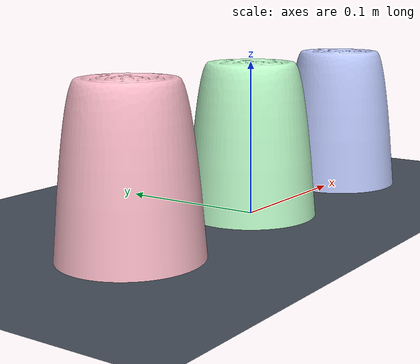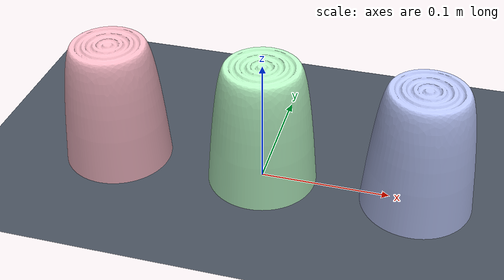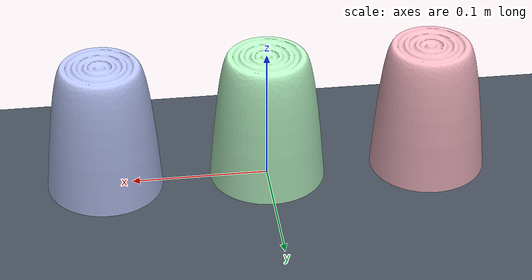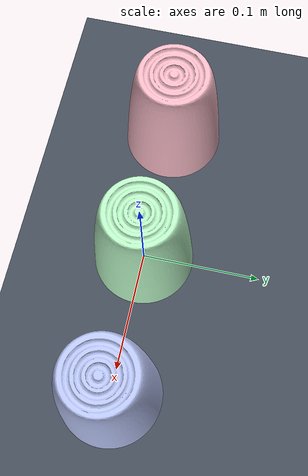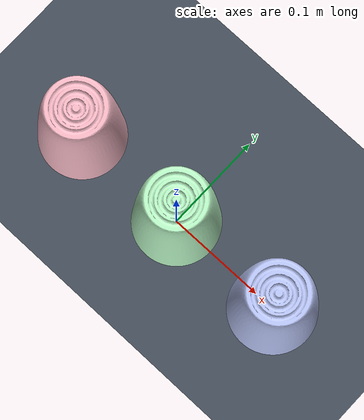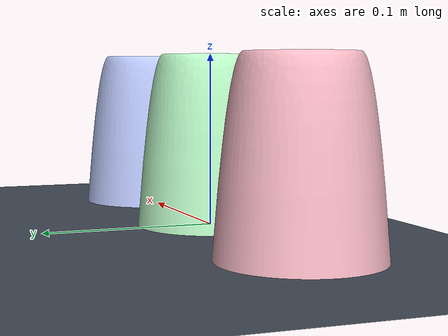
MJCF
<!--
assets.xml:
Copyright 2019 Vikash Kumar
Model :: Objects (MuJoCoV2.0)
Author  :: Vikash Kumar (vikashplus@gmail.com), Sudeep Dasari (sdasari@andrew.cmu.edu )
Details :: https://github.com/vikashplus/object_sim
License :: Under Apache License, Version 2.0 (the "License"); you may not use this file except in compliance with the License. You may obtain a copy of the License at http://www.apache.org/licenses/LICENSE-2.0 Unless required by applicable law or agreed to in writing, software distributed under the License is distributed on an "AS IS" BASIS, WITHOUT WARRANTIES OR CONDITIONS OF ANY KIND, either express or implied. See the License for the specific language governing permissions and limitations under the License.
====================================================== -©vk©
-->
<mujoco model="shell_game">
  <compiler angle="radian" meshdir="../../submodules/object_sim"/>

  <option timestep="0.002" gravity="0 0 -9.81"/>

  <default>
    <default class="grab">
      <joint limited="false" margin="0.01" armature="0.001" damping="0" frictionloss="0.001"/>
      <geom type="mesh" rgba=".93 .99 .97 1.0"/>
      <site size="0.005 0 0" rgba="0.4 0.9 0.4 1"/>
      <default class="object_col">
        <geom type="mesh" density="1250" contype="1" conaffinity="1"
              friction="1 0.5 0.01" margin="0.0005" condim="4"
              rgba=".3 .4 .5 1" group="3"/>
      </default>
    </default>
  </default>

  <visual>
    <global offheight="224" offwidth="224"/>
    <headlight diffuse="0.6 0.6 0.6" ambient="0.4 0.4 0.4" specular="0.1 0.1 0.1"/>
    <quality shadowsize="2048" offsamples="8"/>
  </visual>

  <include file="../../submodules/object_sim/cup/assets.xml"/>

  <asset>
    <texture name="grid" type="2d" builtin="checker" width="512" height="512"
             rgb1="0.25 0.28 0.32" rgb2="0.30 0.34 0.40"/>
    <material name="floor_mat" texture="grid" texrepeat="6 6" reflectance="0.1"/>
  </asset>

  <worldbody>
    <light directional="true" dir="0 0.3 -1" pos="0 -0.3 1.0"
           diffuse="0.8 0.8 0.8" specular="0.2 0.2 0.2"/>

    <geom name="floor" type="plane" size="2 2 0.1" pos="0 0 0" material="floor_mat"/>

    <camera name="head_on" pos="0 -0.55 0.22" xyaxes="1 0 0 0 0.4 0.9"/>

    <include file="../objects/ball.xml"/>

    <body name="cup0" mocap="true" pos="-0.12 0 0.05" euler="3.14159 0 0" childclass="grab">
      <geom name="cup0_visual" mesh="cup" rgba="1 0.75 0.8 1.0"/>
      <geom name="cup0_c0" mesh="contact0" class="object_col"/>
      <geom name="cup0_c1" mesh="contact1" class="object_col"/>
      <geom name="cup0_c2" mesh="contact2" class="object_col"/>
      <geom name="cup0_c3" mesh="contact3" class="object_col"/>
      <geom name="cup0_c4" mesh="contact4" class="object_col"/>
      <geom name="cup0_c5" mesh="contact5" class="object_col"/>
      <geom name="cup0_c6" mesh="contact6" class="object_col"/>
      <geom name="cup0_c7" mesh="contact7" class="object_col"/>
      <geom name="cup0_c8" mesh="contact8" class="object_col"/>
      <geom name="cup0_c9" mesh="contact9" class="object_col"/>
      <geom name="cup0_c10" mesh="contact10" class="object_col"/>
      <geom name="cup0_c11" mesh="contact11" class="object_col"/>
    </body>

    <body name="cup1" mocap="true" pos="0 0 0.05" euler="3.14159 0 0" childclass="grab">
      <geom name="cup1_visual" mesh="cup" rgba="0.75 1 0.8 1.0"/>
      <geom name="cup1_c0" mesh="contact0" class="object_col"/>
      <geom name="cup1_c1" mesh="contact1" class="object_col"/>
      <geom name="cup1_c2" mesh="contact2" class="object_col"/>
      <geom name="cup1_c3" mesh="contact3" class="object_col"/>
      <geom name="cup1_c4" mesh="contact4" class="object_col"/>
      <geom name="cup1_c5" mesh="contact5" class="object_col"/>
      <geom name="cup1_c6" mesh="contact6" class="object_col"/>
      <geom name="cup1_c7" mesh="contact7" class="object_col"/>
      <geom name="cup1_c8" mesh="contact8" class="object_col"/>
      <geom name="cup1_c9" mesh="contact9" class="object_col"/>
      <geom name="cup1_c10" mesh="contact10" class="object_col"/>
      <geom name="cup1_c11" mesh="contact11" class="object_col"/>
    </body>

    <body name="cup2" mocap="true" pos="0.12 0 0.05" euler="3.14159 0 0" childclass="grab">
      <geom name="cup2_visual" mesh="cup" rgba="0.75 0.8 1 1.0"/>
      <geom name="cup2_c0" mesh="contact0" class="object_col"/>
      <geom name="cup2_c1" mesh="contact1" class="object_col"/>
      <geom name="cup2_c2" mesh="contact2" class="object_col"/>
      <geom name="cup2_c3" mesh="contact3" class="object_col"/>
      <geom name="cup2_c4" mesh="contact4" class="object_col"/>
      <geom name="cup2_c5" mesh="contact5" class="object_col"/>
      <geom name="cup2_c6" mesh="contact6" class="object_col"/>
      <geom name="cup2_c7" mesh="contact7" class="object_col"/>
      <geom name="cup2_c8" mesh="contact8" class="object_col"/>
      <geom name="cup2_c9" mesh="contact9" class="object_col"/>
      <geom name="cup2_c10" mesh="contact10" class="object_col"/>
      <geom name="cup2_c11" mesh="contact11" class="object_col"/>
    </body>
  </worldbody>
</mujoco>

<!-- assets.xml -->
<mujocoinclude model="">
    <asset>
        <mesh name="cup" file="../object_sim/cup/cup.stl"/>
        <mesh name="contact0" file="../object_sim/cup/contact0.stl"/>
        <mesh name="contact1" file="../object_sim/cup/contact1.stl"/>
        <mesh name="contact2" file="../object_sim/cup/contact2.stl"/>
        <mesh name="contact3" file="../object_sim/cup/contact3.stl"/>
        <mesh name="contact4" file="../object_sim/cup/contact4.stl"/>
        <mesh name="contact5" file="../object_sim/cup/contact5.stl"/>
        <mesh name="contact6" file="../object_sim/cup/contact6.stl"/>
        <mesh name="contact7" file="../object_sim/cup/contact7.stl"/>
        <mesh name="contact8" file="../object_sim/cup/contact8.stl"/>
        <mesh name="contact9" file="../object_sim/cup/contact9.stl"/>
        <mesh name="contact10" file="../object_sim/cup/contact10.stl"/>
        <mesh name="contact11" file="../object_sim/cup/contact11.stl"/>
    </asset>
</mujocoinclude>

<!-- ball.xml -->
<mujocoinclude>
  <!-- Free-moving ball, ~ping-pong sized, sits inside a cup (cup inner radius ~0.04) -->
  <body name="ball" pos="0 0 0.015">
    <freejoint name="ball_free"/>
    <geom name="ball_geom" type="sphere" size="0.015" mass="0.0027"
          rgba="0.95 0.6 0.1 1" friction="0.4 0.02 0.001"
          contype="1" conaffinity="1" condim="4"/>
  </body>
</mujocoinclude>
